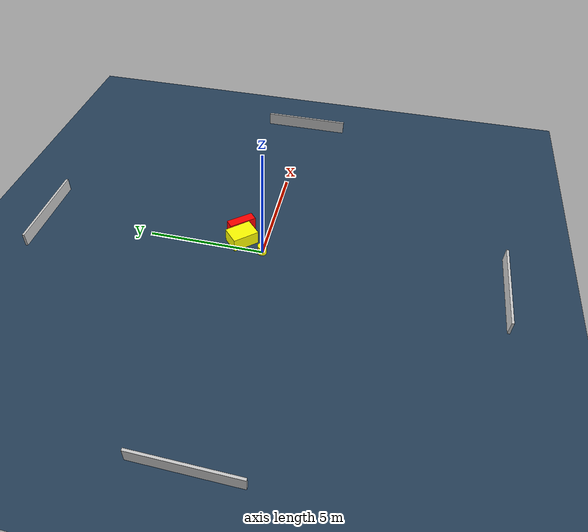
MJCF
<?xml version="1.0" ?>
<mujoco model="generated_environment">
  <option timestep="0.01" integrator="RK4" cone="elliptic"/>
  <default>
    <geom density="1"/>
  </default>
  <asset>
    <texture builtin="gradient" height="3072" name="skybox" rgb1="0.3 0.5 0.7" rgb2="0 0 0" type="skybox" width="512"/>
    <texture builtin="checker" height="300" name="groundplane" rgb1="0.2 0.3 0.4" rgb2="0.1 0.2 0.3" type="2d" width="300"/>
    <material name="groundplane" reflectance="0.2" texrepeat="5 5" texture="groundplane"/>
  </asset>
  <worldbody>
    <light dir="0 0 -1" directional="true" pos="0 0 1.5"/>
    <geom condim="3" friction="0.5 0.005 0.001" material="groundplane" name="floor" pos="0 0 0" size="0 0 0.05" type="plane"/>
    <body name="walls">
      <geom name="wall_1" condim="4" pos="-10.0 0.0 0.3" rgba="0.800000011920929 0.800000011920929 0.800000011920929 1.0" size="0.05 2.0 0.3" type="box"/>
      <geom name="wall_2" condim="4" pos="10.0 0.0 0.3" rgba="0.800000011920929 0.800000011920929 0.800000011920929 1.0" size="0.05 2.0 0.3" type="box"/>
      <geom name="wall_3" condim="4" pos="0.0 -10.0 0.3" rgba="0.800000011920929 0.800000011920929 0.800000011920929 1.0" size="2.0 0.05 0.3" type="box"/>
      <geom name="wall_4" condim="4" pos="0.0 10.0 0.3" rgba="0.800000011920929 0.800000011920929 0.800000011920929 1.0" size="2.0 0.05 0.3" type="box"/>
    </body>
    <body name="robot">
      <joint name="joint_x" type="slide" pos="0 0 0" axis="1 0 0"/>
      <joint name="joint_y" type="slide" pos="0 0 0" axis="0 1 0"/>
      <geom name="robot" type="cylinder" pos="0.0 0.0 0.2" size="0.2 0.2 0.0" mass="5.0" friction="1.0 0.005 0.0001" condim="4" rgba="1.0 1.0 0.0 1.0"/>
    </body>
    <body name="obstacle_1_movable">
      <geom name="obstacle_1_movable" condim="4" pos="0.47806673762448976 1.0194496843027612 0.3" euler="0 0 132.6723279593628" friction="0.0 0.005 0.001" rgba="1.0 1.0 0.0 1.0" size="0.5786304220424614 0.4152209493257685 0.3" type="box" mass="0.1"/>
      <joint type="free"/>
    </body>
    <body name="obstacle_2_static">
      <geom name="obstacle_2_static" condim="4" pos="1.1778475421538404 1.2362457000458325 0.3" euler="0 0 40.85607858836069" friction="0.0 0.005 0.001" rgba="1.0 0.0 0.0 1.0" size="0.20147288725217405 0.5945183726014488 0.3" type="box"/>
    </body>
  </worldbody>
  <actuator>
    <motor name="actuator_x" joint="joint_x" gear="1" ctrlrange="-1 1"/>
    <motor name="actuator_y" joint="joint_y" gear="1" ctrlrange="-1 1"/>
  </actuator>
</mujoco>
